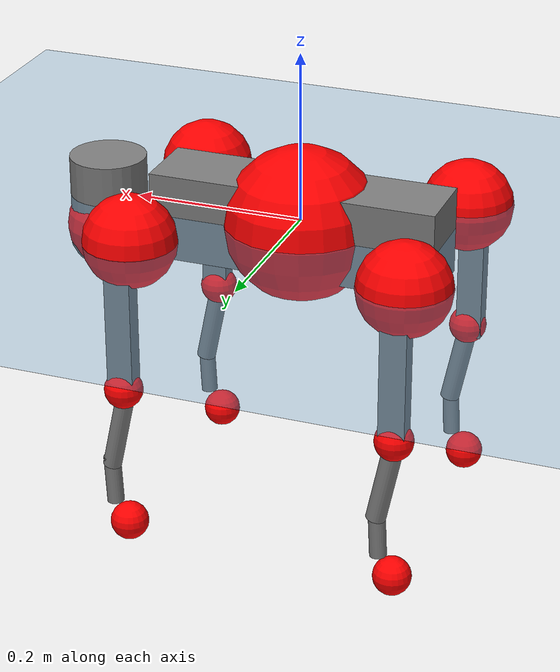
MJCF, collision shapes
<mujoco model="go2">
  <compiler angle="radian" assetdir="assets" balanceinertia="true" inertiafromgeom="false"/>

  <option timestep="0.005" density="1.2" viscosity="2e-05"/>

  <size nkey="1"/>

  <visual>
    <quality shadowsize="8192"/>
    <map shadowclip="0.5"/>
  </visual>

  <default>
    <default class="/">
      <geom contype="0" conaffinity="0" group="1" solref="-1000 -80"/>
      <site size="0.01 0.005 0.005" group="5"/>
      <general forcelimited="true" biastype="affine" gainprm="20" biasprm="0 -20 -0.5"/>
      <default class="go2">
        <joint armature="0.01" damping="0.01" frictionloss="0.2"/>
        <geom condim="1" margin="0.001"/>
        <default class="visual">
          <geom type="mesh" group="2"/>
        </default>
        <default class="collision">
          <geom group="3"/>
          <default class="foot">
            <geom size="0.022 0 0" condim="6" priority="1" friction="0.8 0.02 0.01" solimp="0.015 1 0.022"/>
          </default>
        </default>
        <default class="reward_collision_sphere">
          <geom group="5" rgba="1 0 0 1"/>
        </default>
      </default>
    </default>
  </default>

  <asset>
    <texture type="skybox" colorspace="auto" name="//unnamed_texture_0" builtin="gradient" rgb1="0.95 0.95 0.95" rgb2="0.95 0.95 0.95" width="100" height="600"/>
    <texture type="2d" colorspace="auto" name="texplane" builtin="checker" rgb1="0.345 0.575 0.748" rgb2="0.345 0.575 0.748" markrgb="1 1 1" width="512" height="512"/>
    <material name="MatPlane" class="/" texture="texplane" texuniform="true" texrepeat="2 2" specular="0.9"/>
    <material name="metal" class="/" rgba="0.9 0.95 0.95 1"/>
    <material name="black" class="/" rgba="0 0 0 1"/>
    <material name="white" class="/"/>
    <material name="gray" class="/" rgba="0.671705 0.692426 0.77427 1"/>
    <mesh name="base_0" class="/" file="base_0.obj"/>
    <mesh name="base_1" class="/" file="base_1.obj"/>
    <mesh name="base_2" class="/" file="base_2.obj"/>
    <mesh name="base_3" class="/" file="base_3.obj"/>
    <mesh name="base_4" class="/" file="base_4.obj"/>
    <mesh name="hip_0" class="/" file="hip_0.obj"/>
    <mesh name="hip_1" class="/" file="hip_1.obj"/>
    <mesh name="thigh_0" class="/" file="thigh_0.obj"/>
    <mesh name="thigh_1" class="/" file="thigh_1.obj"/>
    <mesh name="thigh_mirror_0" class="/" file="thigh_mirror_0.obj"/>
    <mesh name="thigh_mirror_1" class="/" file="thigh_mirror_1.obj"/>
    <mesh name="calf_0" class="/" file="calf_0.obj"/>
    <mesh name="calf_1" class="/" file="calf_1.obj"/>
    <mesh name="calf_mirror_0" class="/" file="calf_mirror_0.obj"/>
    <mesh name="calf_mirror_1" class="/" file="calf_mirror_1.obj"/>
    <mesh name="foot" class="/" file="foot.obj"/>
  </asset>

  <worldbody>
    <geom name="floor" class="/" size="100 100 0.125" type="plane" group="0" material="MatPlane"/>
    <light name="toplight_shadow" class="/" pos="0 0 5" dir="0.0990148 0.0990148 -0.990148" type="directional" ambient="0.04 0.04 0.04" diffuse="0.55 0.55 0.55" specular="0.12 0.12 0.12"/>
    <light name="toplight_fill" class="/" pos="0 0 5" dir="0.0990148 0.0990148 -0.990148" type="directional" castshadow="false" ambient="0.04 0.04 0.04" diffuse="0.3 0.3 0.3" specular="0.08 0.08 0.08"/>
    <body name="trunk" childclass="go2" pos="-0.00176257 0.000425982 -0.00267797" quat="1 -0.000137043 -0.000234583 -0.000160337">
      <inertial pos="0.0188739 0.0028966 -0.00510478" quat="0.00219053 0.717918 0.00104062 0.696123" mass="5.42759" diaginertia="0.0469683 0.127936 0.00978466"/>
      <joint name="//unnamed_joint_0" type="free" armature="0" damping="0" frictionloss="0"/>
      <geom name="//unnamed_geom_1" class="visual" material="black" mesh="base_0"/>
      <geom name="//unnamed_geom_2" class="visual" material="black" mesh="base_1"/>
      <geom name="//unnamed_geom_3" class="visual" material="black" mesh="base_2"/>
      <geom name="//unnamed_geom_4" class="visual" material="white" mesh="base_3"/>
      <geom name="//unnamed_geom_5" class="visual" material="gray" mesh="base_4"/>
      <geom name="trunk_1" class="collision" size="0.169974 0.0422451 0.0515074" type="box"/>
      <geom name="trunk_2" class="collision" size="0.0451819 0.0406637" pos="0.24018 0 0.00821452" type="cylinder"/>
      <geom name="trunk_3" class="collision" size="0.042471" pos="0.246921 0 -0.0492871"/>
      <geom name="//unnamed_geom_9" class="reward_collision_sphere" size="0.0903638"/>
      <geom name="//unnamed_geom_10" class="reward_collision_sphere" size="0.0542183" pos="0.235966 0 -0.0369653"/>
      <site name="imu" pos="-0.0205377 0.0122261 0.0332605" size="0.00903638"/>
      <camera name="track" pos="0 -2.09345 0" quat="0.707107 0.707107 0 0" mode="trackcom"/>
      <camera name="ego_camera" pos="0.262933 0 0.0369653" quat="-0.5 -0.5 0.5 0.5"/>
      <body name="FL_hip" pos="0.160195 0.0468128 0.00285266" quat="0.999999 -0.000250279 -0.000124182 0.00130201">
        <inertial pos="-0.00220089 0.000776942 -0.0013716" quat="0.497258 0.499618 0.505013 0.498074" mass="0.495205" diaginertia="0.000375993 0.000791397 0.000179887"/>
        <joint name="FL_hip_joint" pos="0 0 0" axis="0.99995 -0.00954081 0.00313235" range="-1.07626 1.04236" armature="0.00908737" damping="0.0224541" frictionloss="0.184542"/>
        <geom name="//unnamed_geom_11" class="visual" material="metal" mesh="hip_0"/>
        <geom name="//unnamed_geom_12" class="visual" material="gray" mesh="hip_1"/>
        <geom name="//unnamed_geom_13" class="collision" size="0.0415673 0.0180728" pos="0 0.0837381 0" quat="0.707107 0.707107 0 0" type="cylinder"/>
        <geom name="//unnamed_geom_14" class="reward_collision_sphere" size="0.0542183" pos="0 0.0732708 0"/>
        <body name="FL_thigh" pos="0.00183939 0.0993341 0.00220506" quat="1 -0.000143526 6.90921e-05 3.58206e-05">
          <inertial pos="-0.00189357 -0.0252211 -0.0263912" quat="0.82959 0.0845315 -0.0199266 0.551577" mass="0.841474" diaginertia="0.00256649 0.00717886 0.00031447"/>
          <joint name="FL_thigh_joint" pos="0 0 0" axis="0.00916704 0.999946 -0.00481455" stiffness="0.0135288" range="-1.51471 3.49219" armature="0.00781501" damping="0.00466276" frictionloss="0.155955"/>
          <geom name="//unnamed_geom_15" class="visual" material="metal" mesh="thigh_0"/>
          <geom name="//unnamed_geom_16" class="visual" material="gray" mesh="thigh_1"/>
          <geom name="//unnamed_geom_17" class="collision" size="0.0962374 0.0110696 0.0153618" pos="0 0 -0.0874846" quat="0.707107 0 0.707107 0" type="box"/>
          <body name="FL_calf" pos="0.000187469 0.000382228 -0.177211" quat="0.999999 -0.000698639 -0.000412377 -0.000677399">
            <inertial pos="0.00466873 -0.000401537 -0.114054" quat="0.717474 -0.00511619 -0.011656 0.696469" mass="0.177572" diaginertia="0.000599824 0.00183617 1.99828e-05"/>
            <joint name="FL_calf_joint" pos="0 0 0" axis="-0.0165681 0.999727 0.0164591" stiffness="0.0091853" range="-2.71227 -0.843059" armature="0.0100793" damping="0.00487423" frictionloss="0.20366"/>
            <geom name="//unnamed_geom_18" class="visual" material="gray" mesh="calf_0"/>
            <geom name="//unnamed_geom_19" class="visual" material="black" mesh="calf_1"/>
            <geom name="FL_calf0" class="collision" size="0.0108437 0.0542183" pos="0.00674188 0 -0.0492871" quat="0.994493 0 -0.104807 0" type="cylinder"/>
            <geom name="//unnamed_geom_21" class="collision" size="0.00994002 0.0293682" pos="0.0168547 0 -0.121575" quat="0.999688 0 0.0249974 0" type="cylinder"/>
            <geom name="//unnamed_geom_22" class="visual" pos="0 0 -0.174969" quat="1 0 0 0" material="black" mesh="foot"/>
            <geom name="FL_foot" class="foot" size="0.0159091" pos="-0.00168547 0 -0.174969"/>
            <geom name="//unnamed_geom_24" class="reward_collision_sphere" size="0.0225909"/>
            <geom name="//unnamed_geom_25" class="reward_collision_sphere" size="0.0225909" pos="-0.00168547 0 -0.174969"/>
            <site name="FL_foot" class="foot" pos="-0.00168547 0 -0.174969" size="0.00903638"/>
          </body>
        </body>
      </body>
      <body name="FR_hip" pos="0.164808 -0.046529 0.00136147" quat="1 0.000184006 0.00031389 0.00013596">
        <inertial pos="-0.00189567 -0.00199927 -0.000332286" quat="0.497541 0.505484 0.501283 0.495636" mass="0.501991" diaginertia="0.000358961 0.000726427 0.000169949"/>
        <joint name="FR_hip_joint" pos="0 0 0" axis="0.999915 -0.000755484 0.0130328" range="-0.996573 1.05399" armature="0.0100645" damping="0.0108028" frictionloss="0.177438"/>
        <geom name="//unnamed_geom_26" class="visual" pos="0 1.9625e-09 8.41757e-08" quat="4.63268e-05 1 0 0" material="metal" mesh="hip_0"/>
        <geom name="//unnamed_geom_27" class="visual" pos="0 3.18145e-09 -2.08199e-07" quat="4.63268e-05 1 0 0" material="gray" mesh="hip_1"/>
        <geom name="//unnamed_geom_28" class="collision" size="0.0415673 0.0180728" pos="0 -0.0837381 0" quat="0.707107 0.707107 0 0" type="cylinder"/>
        <geom name="//unnamed_geom_29" class="reward_collision_sphere" size="0.0542183" pos="0 -0.0732708 0"/>
        <body name="FR_thigh" pos="0.000483024 -0.0983411 0.00347307" quat="1 -0.000323834 0.000138219 0.000124874">
          <inertial pos="-0.000572811 0.0222557 -0.0267453" quat="0.557032 -0.0135863 0.0815189 0.826369" mass="0.843327" diaginertia="0.00244676 0.00686245 0.000319929"/>
          <joint name="FR_thigh_joint" pos="0 0 0" axis="-0.00352018 -0.999953 0.00906242" range="-3.50719 1.58462" armature="0.00889673" damping="0.00115473" frictionloss="0.205686"/>
          <geom name="//unnamed_geom_30" class="visual" material="metal" mesh="thigh_mirror_0"/>
          <geom name="//unnamed_geom_31" class="visual" material="gray" mesh="thigh_mirror_1"/>
          <geom name="//unnamed_geom_32" class="collision" size="0.0962374 0.0110696 0.0153618" pos="0 0 -0.0874846" quat="0.707107 0 0.707107 0" type="box"/>
          <body name="FR_calf" pos="-0.00160946 -0.000954286 -0.177437" quat="1 -2.94558e-06 -0.000110989 4.91236e-05">
            <inertial pos="0.00529558 0.000327877 -0.11715" quat="0.703714 -0.00376554 0.00175721 0.710471" mass="0.179641" diaginertia="0.000629576 0.00183425 1.94822e-05"/>
            <joint name="FR_calf_joint" pos="0 0 0" axis="-0.00228982 -0.999995 0.00214017" stiffness="0.00513003" range="0.827551 2.75188" armature="0.00782433" damping="0.0133795" frictionloss="0.15572"/>
            <geom name="//unnamed_geom_33" class="visual" material="gray" mesh="calf_mirror_0"/>
            <geom name="//unnamed_geom_34" class="visual" material="black" mesh="calf_mirror_1"/>
            <geom name="FR_calf0" class="collision" size="0.0117473 0.0542183" pos="0.00842735 0 -0.0492871" quat="0.995004 0 -0.0998334 0" type="cylinder"/>
            <geom name="//unnamed_geom_36" class="collision" size="0.00994002 0.0293682" pos="0.0168547 0 -0.121575" quat="0.999688 0 0.0249974 0" type="cylinder"/>
            <geom name="//unnamed_geom_37" class="visual" pos="0 0 -0.174969" quat="1 0 0 0" material="black" mesh="foot"/>
            <geom name="FR_foot" class="foot" size="0.0196565" pos="-0.00168547 0 -0.174969"/>
            <geom name="//unnamed_geom_39" class="reward_collision_sphere" size="0.0225909"/>
            <geom name="//unnamed_geom_40" class="reward_collision_sphere" size="0.0225909" pos="-0.00168547 0 -0.174969"/>
            <site name="FR_foot" class="foot" pos="-0.00168547 0 -0.174969" size="0.00903638"/>
          </body>
        </body>
      </body>
      <body name="RL_hip" pos="-0.161777 0.0474383 -0.00118112" quat="1 -0.000442587 -0.000160895 -0.000212166">
        <inertial pos="0.00706394 0.00110108 -0.00131259" quat="0.503901 0.490863 0.499229 0.505874" mass="0.506574" diaginertia="0.000384124 0.000775614 0.000182831"/>
        <joint name="RL_hip_joint" pos="0 0 0" axis="-0.999769 0.00789469 0.0199718" stiffness="0.00653496" range="-1.06052 1.00062" armature="0.00878468" damping="0" frictionloss="0.179585"/>
        <geom name="//unnamed_geom_41" class="visual" pos="-1.85414e-10 0 -3.63454e-08" quat="4.63268e-05 0 1 0" material="metal" mesh="hip_0"/>
        <geom name="//unnamed_geom_42" class="visual" pos="-3.00579e-10 0 -3.22332e-08" quat="4.63268e-05 0 1 0" material="gray" mesh="hip_1"/>
        <geom name="//unnamed_geom_43" class="collision" size="0.0415673 0.0180728" pos="0 0.0837381 0" quat="0.707107 0.707107 0 0" type="cylinder"/>
        <geom name="//unnamed_geom_44" class="reward_collision_sphere" size="0.0542183" pos="0 0.0732708 0"/>
        <body name="RL_thigh" pos="-0.000243532 0.0997203 -0.000491481" quat="1 0.000100742 -0.000204267 -0.000205661">
          <inertial pos="-0.00341966 -0.0235239 -0.0254047" quat="0.836563 0.078473 -0.0209988 0.541815" mass="0.863411" diaginertia="0.00257669 0.00767855 0.000346488"/>
          <joint name="RL_thigh_joint" pos="0 0 0" axis="0.00994564 0.99995 -0.000573962" stiffness="0.00263735" range="-0.533546 4.52928" armature="0.00952404" damping="0" frictionloss="0.178416"/>
          <geom name="//unnamed_geom_45" class="visual" material="metal" mesh="thigh_0"/>
          <geom name="//unnamed_geom_46" class="visual" material="gray" mesh="thigh_1"/>
          <geom name="//unnamed_geom_47" class="collision" size="0.0962374 0.0110696 0.0153618" pos="0 0 -0.0874846" quat="0.707107 0 0.707107 0" type="box"/>
          <body name="RL_calf" pos="2.28346e-06 -0.00199502 -0.174186" quat="0.999999 -5.02707e-05 -0.000485409 -0.000925065">
            <inertial pos="0.00253297 -0.00200248 -0.116766" quat="0.711017 -0.00519917 0.00609216 0.703129" mass="0.183633" diaginertia="0.00063459 0.00188487 2.09362e-05"/>
            <joint name="RL_calf_joint" pos="0 0 0" axis="-0.0210576 0.999765 0.0051009" stiffness="0.0118053" range="-2.73161 -0.782957" armature="0.0100074" damping="0" frictionloss="0.16999"/>
            <geom name="//unnamed_geom_48" class="visual" material="gray" mesh="calf_0"/>
            <geom name="//unnamed_geom_49" class="visual" material="black" mesh="calf_1"/>
            <geom name="RL_calf0" class="collision" size="0.0117473 0.0542183" pos="0.00842735 0 -0.0492871" quat="0.995004 0 -0.0998334 0" type="cylinder"/>
            <geom name="//unnamed_geom_51" class="collision" size="0.00994002 0.0293682" pos="0.0168547 0 -0.121575" quat="0.999688 0 0.0249974 0" type="cylinder"/>
            <geom name="//unnamed_geom_52" class="visual" pos="0 0 -0.174969" quat="1 0 0 0" material="black" mesh="foot"/>
            <geom name="RL_foot" class="foot" size="0.0170595" pos="-0.00168547 0 -0.174969"/>
            <geom name="//unnamed_geom_54" class="reward_collision_sphere" size="0.0225909"/>
            <geom name="//unnamed_geom_55" class="reward_collision_sphere" size="0.0225909" pos="-0.00168547 0 -0.174969"/>
            <site name="RL_foot" class="foot" pos="-0.00168547 0 -0.174969" size="0.00903638"/>
          </body>
        </body>
      </body>
      <body name="RR_hip" pos="-0.159966 -0.0516121 -0.0045179" quat="1 -0.000164137 -0.000111971 -0.00063279">
        <inertial pos="0.00333881 -0.000613191 0.000867566" quat="0.505596 0.497713 0.495062 0.501566" mass="0.502384" diaginertia="0.000381817 0.000761307 0.000180611"/>
        <joint name="RR_hip_joint" pos="0 0 0" axis="-0.999972 -0.00498063 -0.0055813" stiffness="0.00548922" range="-0.989552 1.07006" armature="0.00772953" damping="0" frictionloss="0.19428"/>
        <geom name="//unnamed_geom_56" class="visual" pos="1.92476e-10 1.9625e-09 -1.20521e-07" quat="2.14617e-09 4.63268e-05 4.63268e-05 -1" material="metal" mesh="hip_0"/>
        <geom name="//unnamed_geom_57" class="visual" pos="2.83111e-10 3.18145e-09 1.75965e-07" quat="2.14617e-09 4.63268e-05 4.63268e-05 -1" material="gray" mesh="hip_1"/>
        <geom name="//unnamed_geom_58" class="collision" size="0.0415673 0.0180728" pos="0 -0.0837381 0" quat="0.707107 0.707107 0 0" type="cylinder"/>
        <geom name="//unnamed_geom_59" class="reward_collision_sphere" size="0.0542183" pos="0 -0.0732708 0"/>
        <body name="RR_thigh" pos="-0.00128731 -0.101952 0.00205372" quat="1 0.000238996 0.000245391 -0.000504728">
          <inertial pos="-0.00391251 0.023137 -0.0269751" quat="0.552784 -0.0217341 0.0873601 0.828448" mass="0.844261" diaginertia="0.00248147 0.00749183 0.000328527"/>
          <joint name="RR_thigh_joint" pos="0 0 0" axis="-0.00861597 -0.999949 -0.0052289" stiffness="0.0103894" range="-4.52877 0.528277" armature="0.00899422" damping="0.0219963" frictionloss="0.19499"/>
          <geom name="//unnamed_geom_60" class="visual" material="metal" mesh="thigh_mirror_0"/>
          <geom name="//unnamed_geom_61" class="visual" material="gray" mesh="thigh_mirror_1"/>
          <geom name="//unnamed_geom_62" class="collision" size="0.0962374 0.0110696 0.0153618" pos="0 0 -0.0874846" quat="0.707107 0 0.707107 0" type="box"/>
          <body name="RR_calf" pos="0.00365915 -0.00143882 -0.17272" quat="1 -0.000270445 -0.000296161 0.000226954">
            <inertial pos="0.00374732 0.00140867 -0.115676" quat="0.704872 -0.00919563 0.012704 0.709161" mass="0.178044" diaginertia="0.000651781 0.00180708 1.99365e-05"/>
            <joint name="RR_calf_joint" pos="0 0 0" axis="0.000564421 -1 0.000385598" range="0.788834 2.73151" armature="0.00793555" damping="0.00833921" frictionloss="0.158805"/>
            <geom name="//unnamed_geom_63" class="visual" material="gray" mesh="calf_mirror_0"/>
            <geom name="//unnamed_geom_64" class="visual" material="black" mesh="calf_mirror_1"/>
            <geom name="RR_calf0" class="collision" size="0.0117473 0.0542183" pos="0.00842735 0 -0.0492871" quat="0.995004 0 -0.0998334 0" type="cylinder"/>
            <geom name="//unnamed_geom_66" class="collision" size="0.00994002 0.0293682" pos="0.0168547 0 -0.121575" quat="0.999688 0 0.0249974 0" type="cylinder"/>
            <geom name="//unnamed_geom_67" class="visual" pos="0 0 -0.174969" quat="1 0 0 0" material="black" mesh="foot"/>
            <geom name="RR_foot" class="foot" size="0.0195359" pos="-0.00168547 0 -0.174969"/>
            <geom name="//unnamed_geom_69" class="reward_collision_sphere" size="0.0225909"/>
            <geom name="//unnamed_geom_70" class="reward_collision_sphere" size="0.0225909" pos="-0.00168547 0 -0.174969"/>
            <site name="RR_foot" class="foot" pos="-0.00168547 0 -0.174969" size="0.00903638"/>
          </body>
        </body>
      </body>
    </body>
  </worldbody>

  <contact>
    <pair class="/" geom1="floor" geom2="FL_foot" name="//unnamed_contact_0"/>
    <pair class="/" geom1="floor" geom2="FR_foot" name="//unnamed_contact_1"/>
    <pair class="/" geom1="floor" geom2="RL_foot" name="//unnamed_contact_2"/>
    <pair class="/" geom1="floor" geom2="RR_foot" name="//unnamed_contact_3"/>
  </contact>

  <actuator>
    <general name="FL_hip" class="/" joint="FL_hip_joint" forcerange="-21.0502 21.0502" gainprm="19.1654" biasprm="0 -19.1654 -0.436522"/>
    <general name="FL_thigh" class="/" joint="FL_thigh_joint" forcerange="-19.4706 19.4706" gainprm="19.1654" biasprm="0 -19.1654 -0.436522"/>
    <general name="FL_calf" class="/" joint="FL_calf_joint" forcerange="-39.5962 39.5962" gainprm="19.1654" biasprm="0 -19.1654 -0.436522"/>
    <general name="FR_hip" class="/" joint="FR_hip_joint" forcerange="-22.0476 22.0476" gainprm="19.1654" biasprm="0 -19.1654 -0.436522"/>
    <general name="FR_thigh" class="/" joint="FR_thigh_joint" forcerange="-23.3583 23.3583" gainprm="19.1654" biasprm="0 -19.1654 -0.436522"/>
    <general name="FR_calf" class="/" joint="FR_calf_joint" forcerange="-42.4206 42.4206" gainprm="19.1654" biasprm="0 -19.1654 -0.436522"/>
    <general name="RL_hip" class="/" joint="RL_hip_joint" forcerange="-20.5492 20.5492" gainprm="19.1654" biasprm="0 -19.1654 -0.436522"/>
    <general name="RL_thigh" class="/" joint="RL_thigh_joint" forcerange="-19.3796 19.3796" gainprm="19.1654" biasprm="0 -19.1654 -0.436522"/>
    <general name="RL_calf" class="/" joint="RL_calf_joint" forcerange="-42.3194 42.3194" gainprm="19.1654" biasprm="0 -19.1654 -0.436522"/>
    <general name="RR_hip" class="/" joint="RR_hip_joint" forcerange="-20.0297 20.0297" gainprm="19.1654" biasprm="0 -19.1654 -0.436522"/>
    <general name="RR_thigh" class="/" joint="RR_thigh_joint" forcerange="-20.9122 20.9122" gainprm="19.1654" biasprm="0 -19.1654 -0.436522"/>
    <general name="RR_calf" class="/" joint="RR_calf_joint" forcerange="-43.8455 43.8455" gainprm="19.1654" biasprm="0 -19.1654 -0.436522"/>
  </actuator>

  <sensor>
    <gyro site="imu" name="imu_angular_velocity"/>
    <velocimeter site="imu" name="imu_linear_velocity"/>
    <framelinvel objtype="site" objname="FL_foot" name="FL_foot_global_linear_velocity"/>
    <framelinvel objtype="site" objname="FR_foot" name="FR_foot_global_linear_velocity"/>
    <framelinvel objtype="site" objname="RL_foot" name="RL_foot_global_linear_velocity"/>
    <framelinvel objtype="site" objname="RR_foot" name="RR_foot_global_linear_velocity"/>
  </sensor>

  <keyframe>
    <key name="home" qpos="0 0 0.325 1 0 0 0 0.1 0.8 -1.5 -0.1 -0.8 1.5 -0.1 0.8 -1.5 0.1 -0.8 1.5"/>
  </keyframe>
</mujoco>
